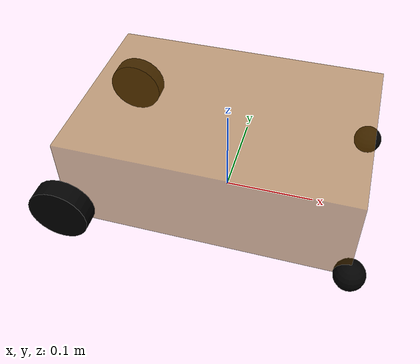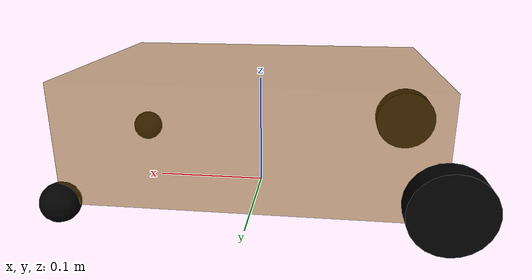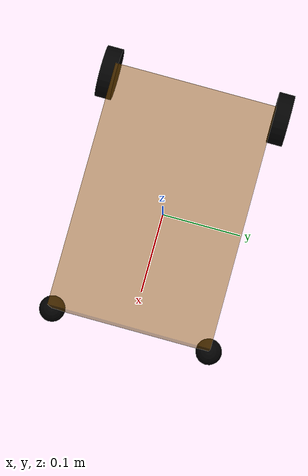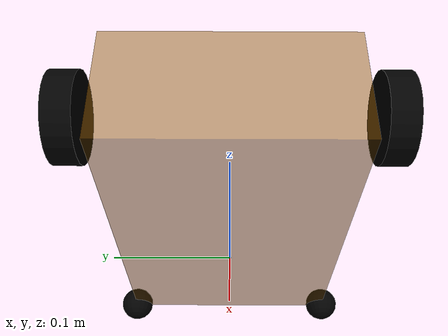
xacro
<robot name="follower_base" xmlns:xacro="http://www.ros.org/wiki/xacro">

    <xacro:property name="PI" value="3.141"/>

    <material name="black">
        <color rgba="0.0 0.0 0.0 1.0" />
    </material>

    <xacro:property name="base_footprint_radius" value="0.001" />
    <xacro:property name="base_link_x" value="0.3" /> <!-- base_link len-->
    <xacro:property name="base_link_y" value="${base_link_x/3*2}" /> <!-- base_link width -->
    <xacro:property name="base_link_z" value="0.1" /> <!-- base_link height -->
    <xacro:property name="earth_space" value="0.015" />
    <xacro:property name="base_link_m" value="0.5" />

    <link name="follower_base_footprint">
      <visual>
        <geometry>
          <sphere radius="${base_footprint_radius}" />
        </geometry>
      </visual>
    </link>

    <link name="follower_base_link">
      <visual>
        <geometry>
          <box size="${base_link_x} ${base_link_y} ${base_link_z}" />
        </geometry>
        <origin xyz="0 0 0" rpy="0 0 0" />
        <material name="yellow">
          <color rgba="0.5 0.3 0.0 0.5" />
        </material>
      </visual>
      <collision>
        <geometry>
          <box size="${base_link_x} ${base_link_y} ${base_link_z}" />
        </geometry>
        <origin xyz="0 0 0" rpy="0 0 0" />
      </collision>
      <xacro:Box_inertial_matrix m="${base_link_m}" l="${base_link_x}" w="${base_link_y}" h="${base_link_z}" />
    </link>

    <joint name="base_link2base_footprint" type="fixed">
      <parent link="follower_base_footprint" />
      <child link="follower_base_link" />
      <origin xyz="0 0 ${earth_space + base_link_z / 2 }" />
    </joint>
    <gazebo reference="follower_base_link">
        <material>Gazebo/Green</material>
    </gazebo>

    <xacro:property name="wheel_radius" value="0.0325" />
    <xacro:property name="wheel_length" value="0.02" />
    <xacro:property name="wheel_m" value="0.05" />

    <!-- flag1 flag2 x and y axis deviation -->
    <xacro:macro name="add_wheels" params="name flag1 flag2">
      <link name="follower_${name}_wheel">
        <visual>
          <geometry>
            <cylinder radius="${wheel_radius}" length="${wheel_length}" />
          </geometry>
          <origin xyz="0.0 0.0 0.0" rpy="${PI / 2} 0.0 0.0" />
          <material name="black" >
            <color rgba="0.0 0.0 0.0 1.0"/>
          </material>
        </visual>
        <collision>
          <geometry>
            <cylinder radius="${wheel_radius}" length="${wheel_length}" />
          </geometry>
          <origin xyz="0.0 0.0 0.0" rpy="${PI / 2} 0.0 0.0" />
        </collision>
        <xacro:cylinder_inertial_matrix m="${wheel_m}" r="${wheel_radius}" h="${wheel_length}" />
      </link>

      <joint name="${name}_wheel2base_link" type="continuous">
        <parent link="follower_base_link" />
        <child link="follower_${name}_wheel" />
        <origin xyz="${flag1 * base_link_x/2} ${flag2 * (base_link_y/2+wheel_length/2)} ${-(earth_space + base_link_z / 2) + wheel_radius }" />
        <axis xyz="0 1 0" />
      </joint>

      <gazebo reference="follower_${name}_wheel">
        <material>Gazebo/Black</material>
        <mu1>10000000</mu1>
		    <mu2>10000000</mu2>
		    <kp>10000000</kp>
		    <kd>1</kd>
      </gazebo>
    </xacro:macro>

    <xacro:add_wheels name="left_back" flag1="-1" flag2="1" />
    <xacro:add_wheels name="right_back" flag1="-1" flag2="-1" />

    <!-- omin -->
    <xacro:macro name="add_support_wheel" params="name flag1 flag2" >
      <link name="follower_${name}_wheel">
        <visual>
            <geometry>
                <sphere radius="${wheel_radius/2}" />
            </geometry>
            <origin xyz="0 0 0" rpy="0 0 0" />
            <material name="black" >
            <color rgba="0.0 0.0 0.0 0.0"/>
          </material>
        </visual>
        <collision>
            <geometry>
                <sphere radius="${wheel_radius/2}" />
            </geometry>
            <origin xyz="0 0 0" rpy="0 0 0" />
        </collision>
        <xacro:sphere_inertial_matrix m="${wheel_m}" r="${wheel_radius/2}" />
      </link>

      <joint name="${name}_wheel2base_link" type="continuous">
          <parent link="follower_base_link" />
          <child link="follower_${name}_wheel" />
          <origin xyz="${flag1 * base_link_x/2} ${flag2 * base_link_y/2} ${-(earth_space + base_link_z / 2 - wheel_radius/2) }" />
          <axis xyz="1 1 1" />
      </joint>
      <gazebo reference="follower_${name}_wheel">
        <material>Gazebo/Black</material>
      </gazebo>
    </xacro:macro>
    <xacro:add_support_wheel name="right_fore" flag1="1" flag2="-1" />
    <xacro:add_support_wheel name="left_fore" flag1="1" flag2="1" />
</robot>
